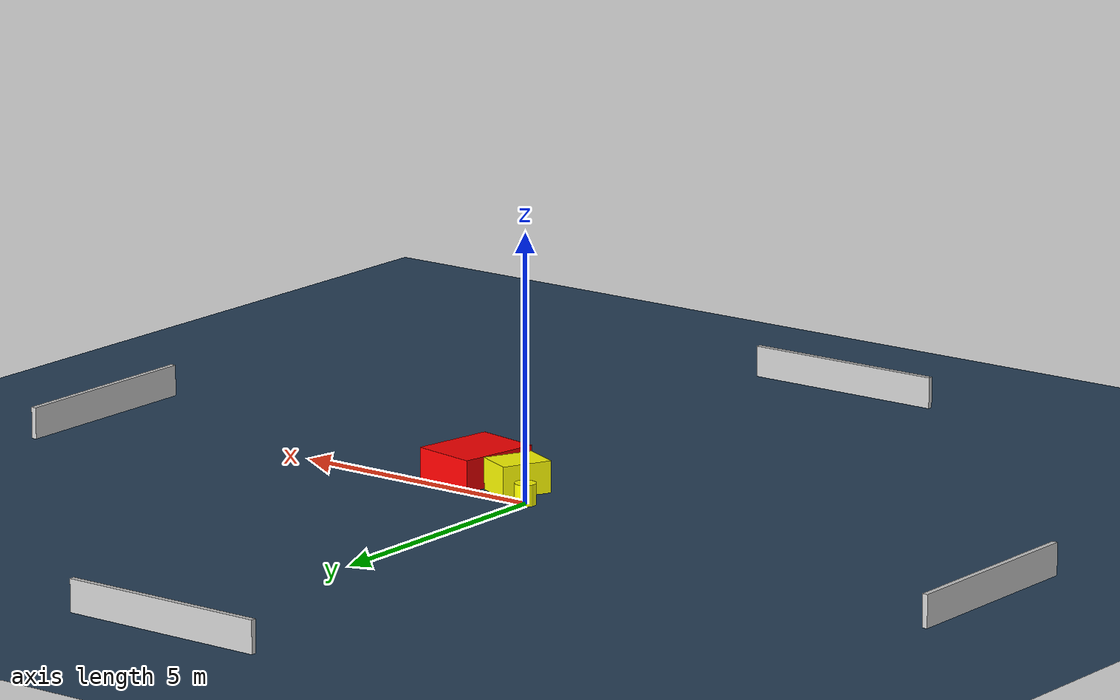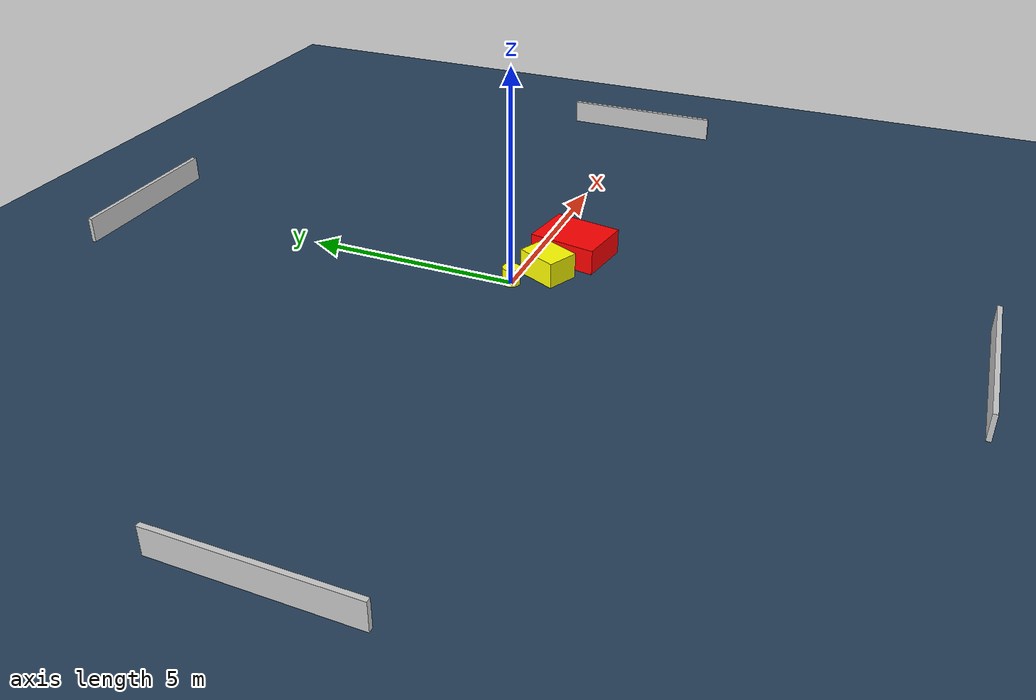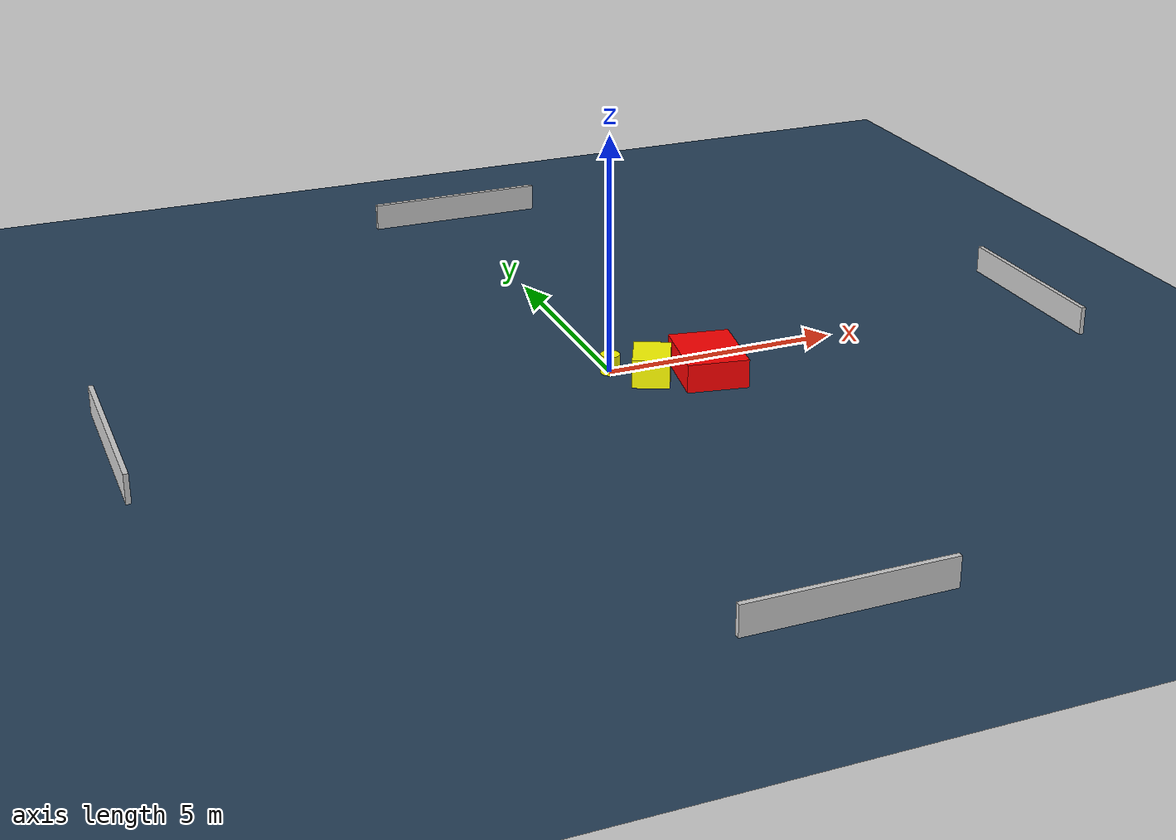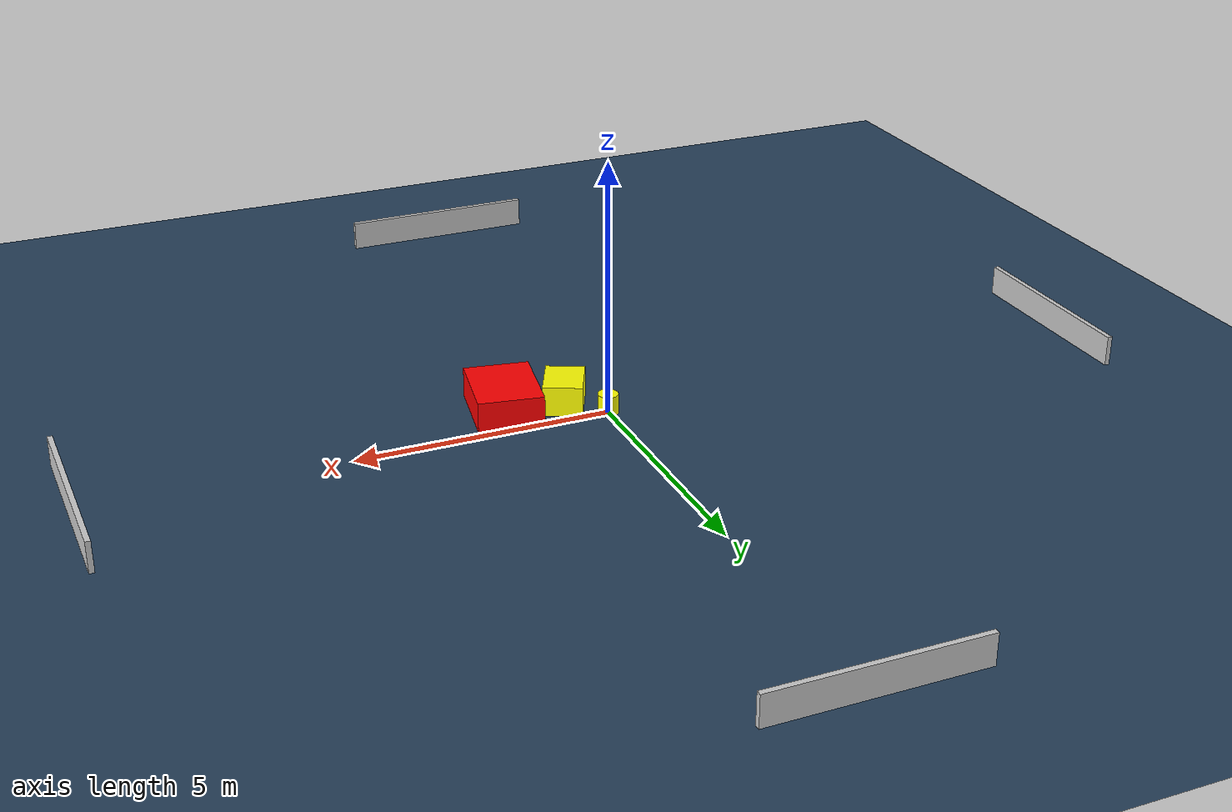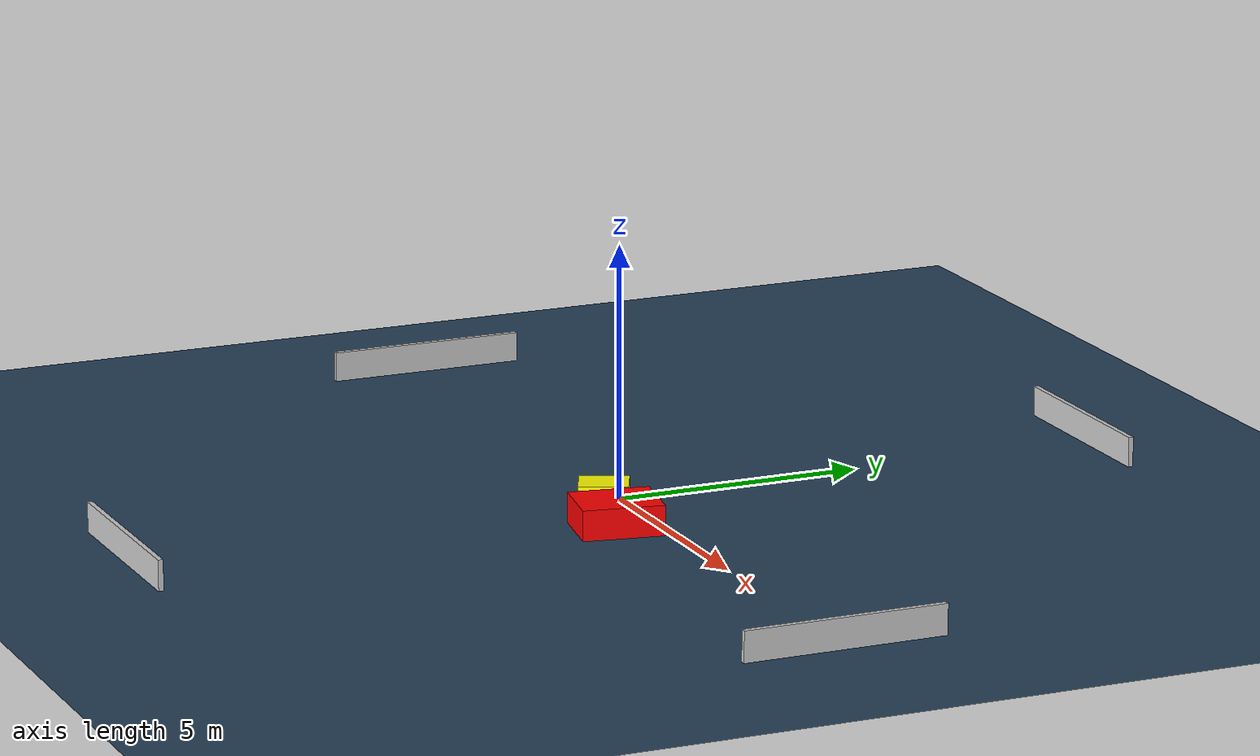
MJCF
<?xml version="1.0" ?>
<mujoco model="generated_environment">
  <option timestep="0.01" integrator="RK4" cone="elliptic"/>
  <default>
    <geom density="1"/>
  </default>
  <asset>
    <texture builtin="gradient" height="3072" name="skybox" rgb1="0.3 0.5 0.7" rgb2="0 0 0" type="skybox" width="512"/>
    <texture builtin="checker" height="300" name="groundplane" rgb1="0.2 0.3 0.4" rgb2="0.1 0.2 0.3" type="2d" width="300"/>
    <material name="groundplane" reflectance="0.2" texrepeat="5 5" texture="groundplane"/>
  </asset>
  <worldbody>
    <light dir="0 0 -1" directional="true" pos="0 0 1.5"/>
    <geom condim="3" friction="0.5 0.005 0.001" material="groundplane" name="floor" pos="0 0 0" size="0 0 0.05" type="plane"/>
    <body name="walls">
      <geom name="wall_1" condim="4" pos="-10.0 0.0 0.3" rgba="0.800000011920929 0.800000011920929 0.800000011920929 1.0" size="0.05 2.0 0.3" type="box"/>
      <geom name="wall_2" condim="4" pos="10.0 0.0 0.3" rgba="0.800000011920929 0.800000011920929 0.800000011920929 1.0" size="0.05 2.0 0.3" type="box"/>
      <geom name="wall_3" condim="4" pos="0.0 -10.0 0.3" rgba="0.800000011920929 0.800000011920929 0.800000011920929 1.0" size="2.0 0.05 0.3" type="box"/>
      <geom name="wall_4" condim="4" pos="0.0 10.0 0.3" rgba="0.800000011920929 0.800000011920929 0.800000011920929 1.0" size="2.0 0.05 0.3" type="box"/>
    </body>
    <body name="robot">
      <joint name="joint_x" type="slide" pos="0 0 0" axis="1 0 0"/>
      <joint name="joint_y" type="slide" pos="0 0 0" axis="0 1 0"/>
      <geom name="robot" type="cylinder" pos="0.0 0.0 0.2" size="0.2 0.2 0.0" mass="5.0" friction="1.0 0.005 0.0001" condim="4" rgba="1.0 1.0 0.0 1.0"/>
    </body>
    <body name="obstacle_1_movable">
      <geom name="obstacle_1_movable" condim="4" pos="0.6494442036394 -0.617938302805911 0.3" euler="0 0 154.61424245295387" friction="0.0 0.005 0.001" rgba="1.0 1.0 0.0 1.0" size="0.38041112600585947 0.48351863346661234 0.3" type="box" mass="0.1"/>
      <joint type="free"/>
    </body>
    <body name="obstacle_2_static">
      <geom name="obstacle_2_static" condim="4" pos="1.787332364165964 -0.854196221257034 0.3" euler="0 0 80.19629292186045" friction="0.0 0.005 0.001" rgba="1.0 0.0 0.0 1.0" size="0.7964177851599497 0.6354150122311379 0.3" type="box"/>
    </body>
  </worldbody>
  <actuator>
    <motor name="actuator_x" joint="joint_x" gear="1" ctrlrange="-1 1"/>
    <motor name="actuator_y" joint="joint_y" gear="1" ctrlrange="-1 1"/>
  </actuator>
</mujoco>
